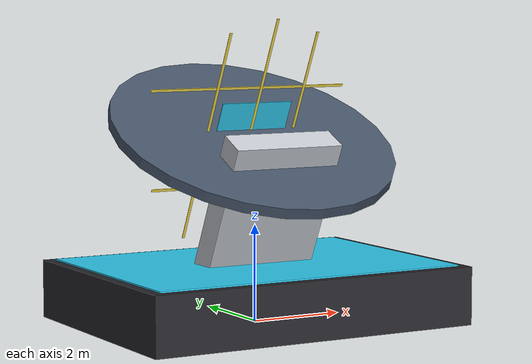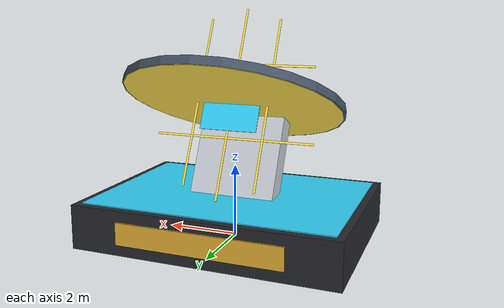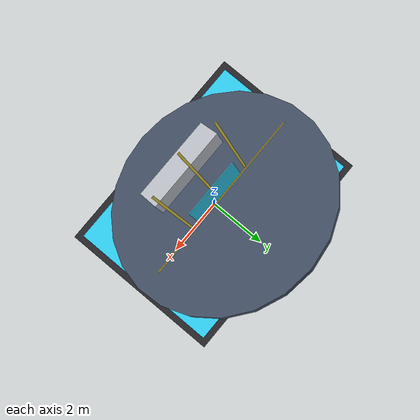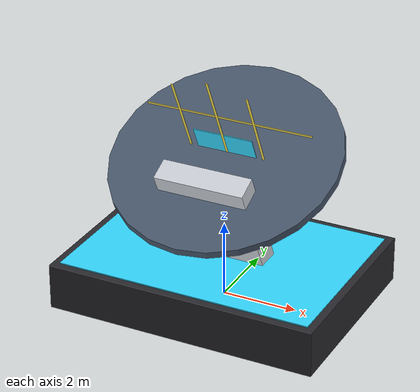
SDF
<?xml version="1.0" ?>
<sdf version="1.8">
  <model name="monument_silicon_wafer">
    <static>true</static>
    <link name="monument_link">
      <!-- 物理碰撞體 -->
      <collision name="col">
        <pose>0 0 3.2 0 0 0</pose>
        <geometry><box><size>7.0 5.0 6.4</size></box></geometry>
        <surface><friction><ode><mu>0.9</mu><mu2>0.9</mu2></ode></friction></surface>
      </collision>

      <!-- 1. 科技黑曜石基座 (Black Obsidian Plinth) -->
      <visual name="plinth_base">
        <pose>0 0 0.6 0 0 0</pose>
        <geometry><box><size>7.2 5.2 1.2</size></box></geometry>
        <material>
          <ambient>0.12 0.12 0.14 1</ambient>
          <diffuse>0.16 0.16 0.18 1</diffuse>
          <specular>0.8 0.8 0.85 1</specular>
        </material>
      </visual>
      <!-- 基座冷光 LED 藍光飾環 (Cyan LED Glow Ring) -->
      <visual name="plinth_led_ring">
        <pose>0 0 1.21 0 0 0</pose>
        <geometry><box><size>6.8 4.8 0.04</size></box></geometry>
        <material>
          <ambient>0.1 0.7 0.9 1</ambient>
          <diffuse>0.2 0.85 1.0 1</diffuse>
          <emissive>0.2 0.8 0.95 1</emissive>
        </material>
      </visual>

      <!-- 2. 晶圓斜倚支承金屬架 (Stainless Steel Support Bracket) -->
      <visual name="support_bracket">
        <pose>0 -0.4 2.2 0.45 0 0</pose>
        <geometry><box><size>2.4 0.6 3.6</size></box></geometry>
        <material>
          <ambient>0.7 0.72 0.75 1</ambient>
          <diffuse>0.8 0.82 0.85 1</diffuse>
          <specular>0.9 0.9 0.95 1</specular>
        </material>
      </visual>

      <!-- 3. 巨型 12 吋 300mm 鏡面矽晶圓主體 (Mirror-polished Silicon Wafer Disc) -->
      <!-- 直徑 6.0m, 厚度 0.22m, 迎向正面傾斜 26 度 -->
      <visual name="wafer_disc">
        <pose>0 0.1 3.8 0.45 0 0</pose>
        <geometry><cylinder><radius>3.0</radius><length>0.22</length></cylinder></geometry>
        <material>
          <ambient>0.18 0.22 0.28 1</ambient>
          <diffuse>0.28 0.34 0.42 1</diffuse>
          <specular>0.98 0.98 1.0 1</specular>
        </material>
      </visual>
      <!-- 晶圓邊緣倒角與圓形鏡面反光外環 (Beveled Rim) -->
      <visual name="wafer_rim">
        <pose>0 0.12 3.8 0.45 0 0</pose>
        <geometry><cylinder><radius>2.96</radius><length>0.23</length></cylinder></geometry>
        <material>
          <ambient>0.7 0.6 0.2 1</ambient>
          <diffuse>0.85 0.75 0.25 1</diffuse>
          <specular>1 1 0.8 1</specular>
        </material>
      </visual>

      <!-- 4. 晶圓光刻電路矩陣 (Photolithography Circuit Die Grid - 縱橫晶片陣列) -->
      <visual name="wafer_grid_h1"><pose>0 0.23 3.8 0.45 0 0</pose><geometry><box><size>5.2 0.01 0.06</size></box></geometry><material><ambient>0.9 0.8 0.2 1</ambient><diffuse>1 0.9 0.3 1</diffuse></material></visual>
      <visual name="wafer_grid_h2"><pose>0 0.23 4.8 0.45 0 0</pose><geometry><box><size>4.5 0.01 0.06</size></box></geometry><material><ambient>0.9 0.8 0.2 1</ambient><diffuse>1 0.9 0.3 1</diffuse></material></visual>
      <visual name="wafer_grid_h3"><pose>0 0.23 2.8 0.45 0 0</pose><geometry><box><size>4.5 0.01 0.06</size></box></geometry><material><ambient>0.9 0.8 0.2 1</ambient><diffuse>1 0.9 0.3 1</diffuse></material></visual>
      <visual name="wafer_grid_v1"><pose>-1.0 0.23 3.8 0.45 0 0</pose><geometry><box><size>0.06 0.01 4.8</size></box></geometry><material><ambient>0.9 0.8 0.2 1</ambient><diffuse>1 0.9 0.3 1</diffuse></material></visual>
      <visual name="wafer_grid_v2"><pose>1.0 0.23 3.8 0.45 0 0</pose><geometry><box><size>0.06 0.01 4.8</size></box></geometry><material><ambient>0.9 0.8 0.2 1</ambient><diffuse>1 0.9 0.3 1</diffuse></material></visual>
      <visual name="wafer_grid_v0"><pose>0 0.23 3.8 0.45 0 0</pose><geometry><box><size>0.06 0.01 5.4</size></box></geometry><material><ambient>0.9 0.8 0.2 1</ambient><diffuse>1 0.9 0.3 1</diffuse></material></visual>

      <!-- 5. 核心晶粒高彩光雕銘牌 (Center Core Nanometer Die) -->
      <visual name="wafer_center_die">
        <pose>0 0.24 3.8 0.45 0 0</pose>
        <geometry><box><size>1.6 0.02 1.6</size></box></geometry>
        <material>
          <ambient>0.1 0.7 0.9 1</ambient>
          <diffuse>0.2 0.85 1.0 1</diffuse>
          <specular>1 1 1 1</specular>
          <emissive>0.15 0.5 0.7 1</emissive>
        </material>
      </visual>

      <!-- 6. 紀念基座銅牌銘文 -->
      <visual name="wafer_plaque">
        <pose>0 2.62 0.6 0 0 0</pose>
        <geometry><box><size>4.5 0.05 0.6</size></box></geometry>
        <material>
          <ambient>0.75 0.55 0.15 1</ambient>
          <diffuse>0.90 0.70 0.20 1</diffuse>
          <specular>0.9 0.8 0.4 1</specular>
        </material>
      </visual>
    </link>
  </model>
</sdf>
